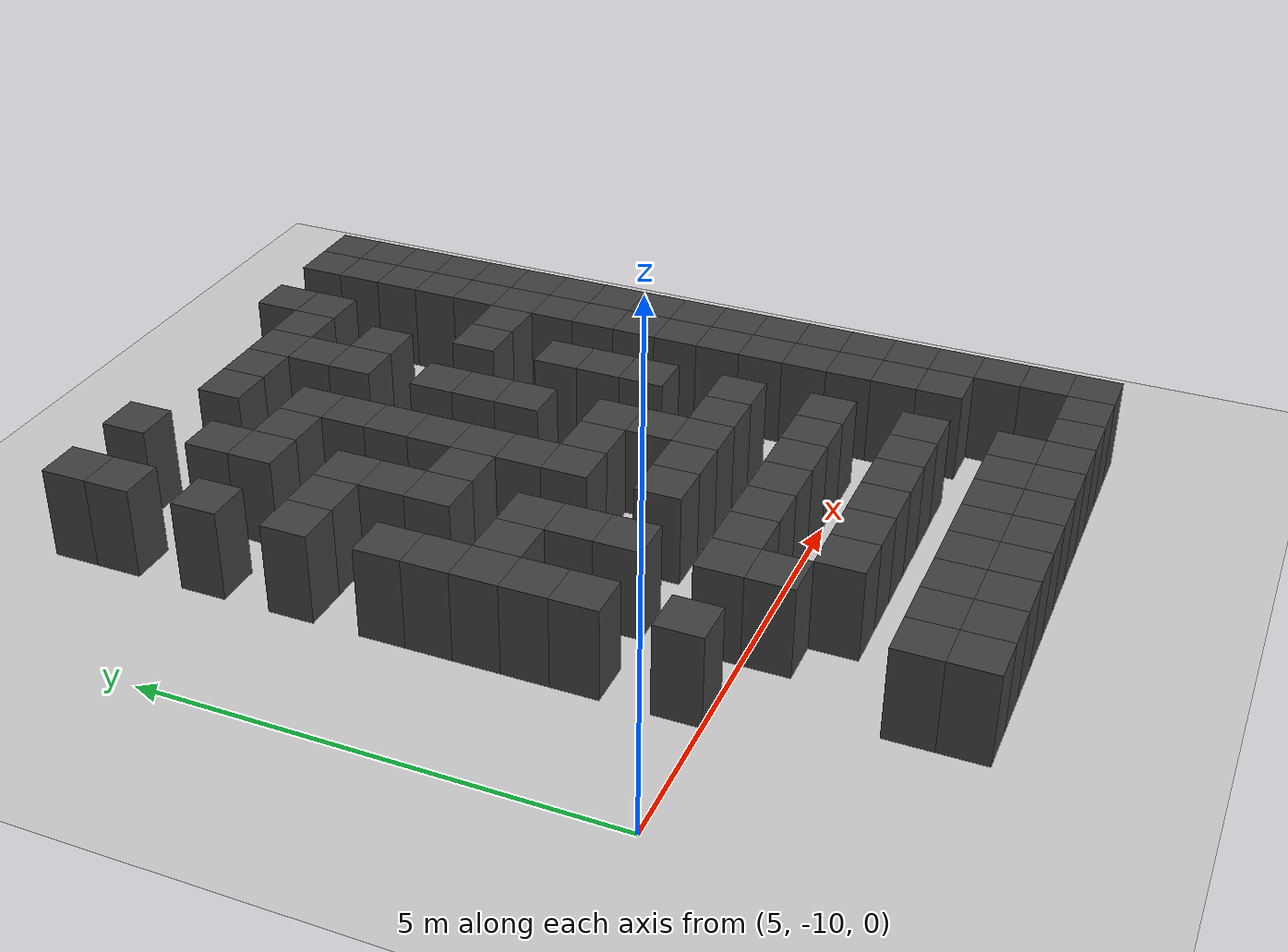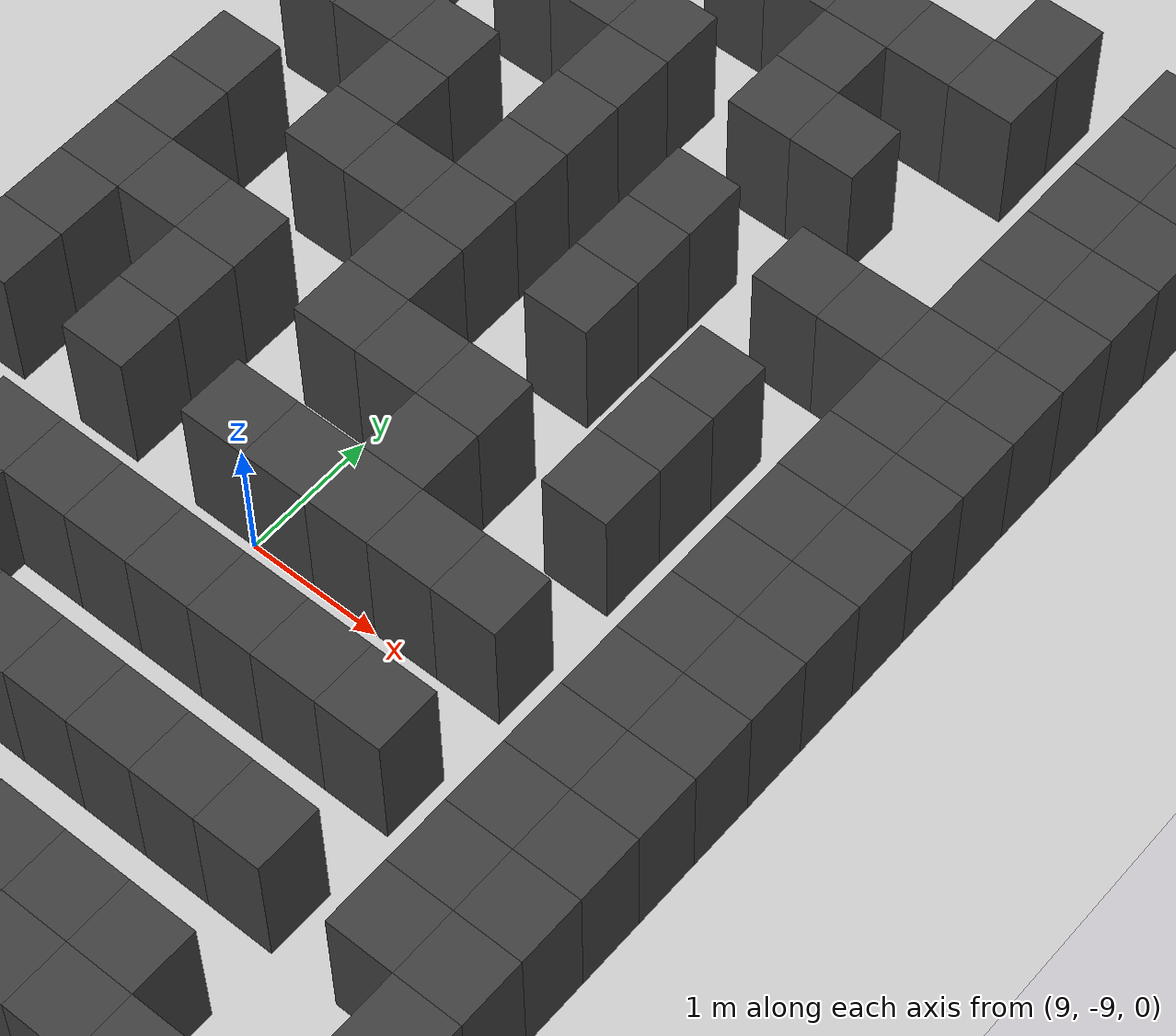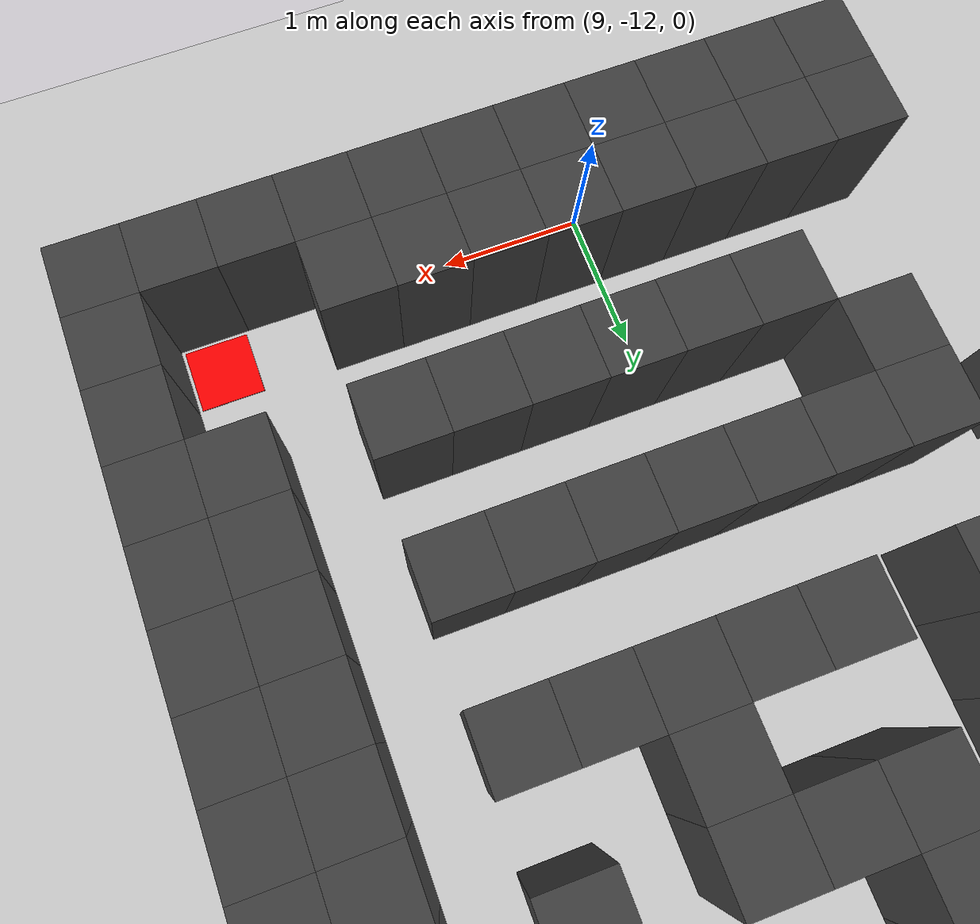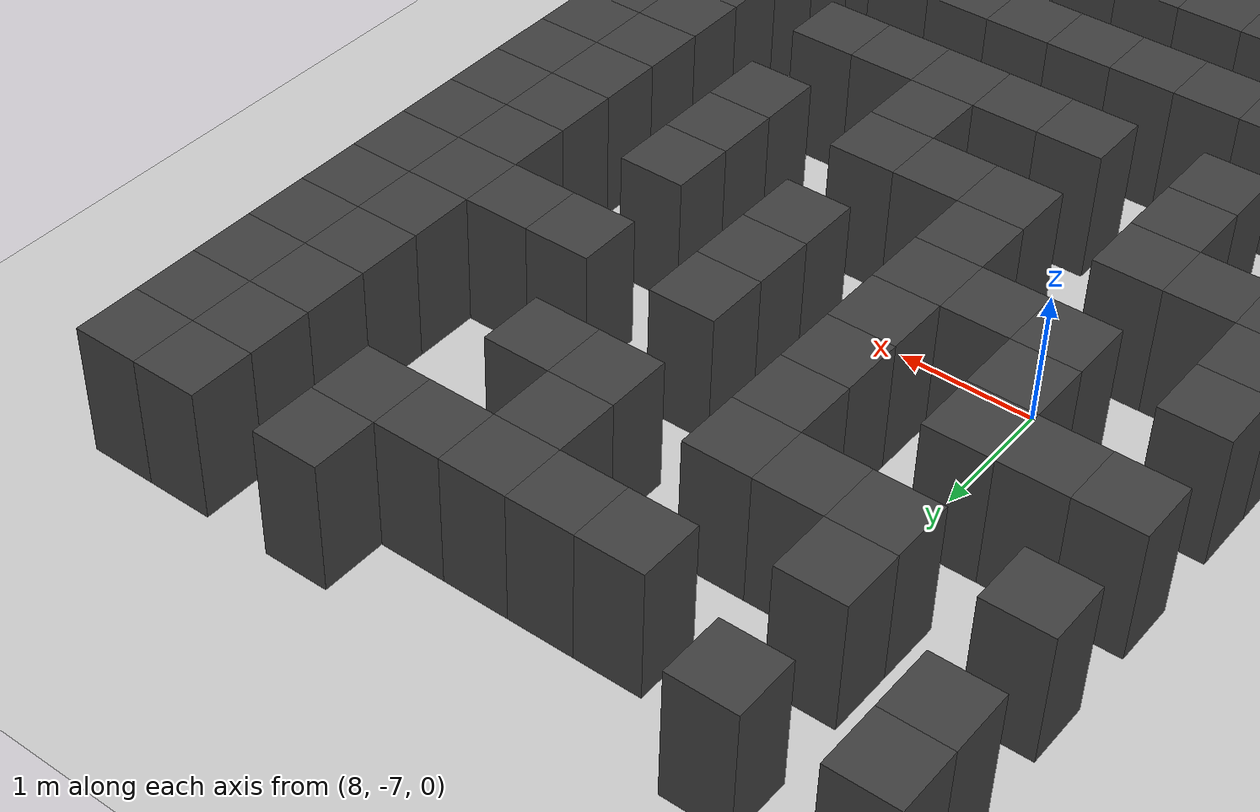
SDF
<sdf version="1.7">
 <world name="map_16271">
  <model name="ground_plane">
   <static>true</static>
   <link name="link">
    <collision name="collision">
     <geometry><plane><normal>0 0 1</normal><size>200 200</size></plane></geometry>
    </collision>
    <visual name="visual">
     <geometry><plane><normal>0 0 1</normal><size>200 200</size></plane></geometry>
     <material><ambient>0.8 0.8 0.8 1</ambient><diffuse>0.8 0.8 0.8 1</diffuse></material>
    </visual>
   </link>
  </model>
  <model name="maze_environment">
   <static>true</static>
   <link name="wall_758">
    <pose>6.750 -3.250 0.500 0 0 0</pose>
    <collision name="col"><geometry><box><size>0.5 0.5 1.0</size></box></geometry></collision>
    <visual name="vis">
     <geometry><box><size>0.5 0.5 1.0</size></box></geometry>
     <material><ambient>0.15 0.15 0.15 1</ambient><diffuse>0.25 0.25 0.25 1</diffuse></material>
    </visual>
   </link>
   <link name="wall_759">
    <pose>7.750 -3.250 0.500 0 0 0</pose>
    <collision name="col"><geometry><box><size>0.5 0.5 1.0</size></box></geometry></collision>
    <visual name="vis">
     <geometry><box><size>0.5 0.5 1.0</size></box></geometry>
     <material><ambient>0.15 0.15 0.15 1</ambient><diffuse>0.25 0.25 0.25 1</diffuse></material>
    </visual>
   </link>
   <link name="wall_760">
    <pose>10.750 -3.250 0.500 0 0 0</pose>
    <collision name="col"><geometry><box><size>0.5 0.5 1.0</size></box></geometry></collision>
    <visual name="vis">
     <geometry><box><size>0.5 0.5 1.0</size></box></geometry>
     <material><ambient>0.15 0.15 0.15 1</ambient><diffuse>0.25 0.25 0.25 1</diffuse></material>
    </visual>
   </link>
   <link name="wall_761">
    <pose>11.750 -3.250 0.500 0 0 0</pose>
    <collision name="col"><geometry><box><size>0.5 0.5 1.0</size></box></geometry></collision>
    <visual name="vis">
     <geometry><box><size>0.5 0.5 1.0</size></box></geometry>
     <material><ambient>0.15 0.15 0.15 1</ambient><diffuse>0.25 0.25 0.25 1</diffuse></material>
    </visual>
   </link>
   <link name="wall_762">
    <pose>12.250 -3.250 0.500 0 0 0</pose>
    <collision name="col"><geometry><box><size>0.5 0.5 1.0</size></box></geometry></collision>
    <visual name="vis">
     <geometry><box><size>0.5 0.5 1.0</size></box></geometry>
     <material><ambient>0.15 0.15 0.15 1</ambient><diffuse>0.25 0.25 0.25 1</diffuse></material>
    </visual>
   </link>
   <link name="wall_789">
    <pose>6.750 -3.750 0.500 0 0 0</pose>
    <collision name="col"><geometry><box><size>0.5 0.5 1.0</size></box></geometry></collision>
    <visual name="vis">
     <geometry><box><size>0.5 0.5 1.0</size></box></geometry>
     <material><ambient>0.15 0.15 0.15 1</ambient><diffuse>0.25 0.25 0.25 1</diffuse></material>
    </visual>
   </link>
   <link name="wall_790">
    <pose>8.750 -3.750 0.500 0 0 0</pose>
    <collision name="col"><geometry><box><size>0.5 0.5 1.0</size></box></geometry></collision>
    <visual name="vis">
     <geometry><box><size>0.5 0.5 1.0</size></box></geometry>
     <material><ambient>0.15 0.15 0.15 1</ambient><diffuse>0.25 0.25 0.25 1</diffuse></material>
    </visual>
   </link>
   <link name="wall_791">
    <pose>9.250 -3.750 0.500 0 0 0</pose>
    <collision name="col"><geometry><box><size>0.5 0.5 1.0</size></box></geometry></collision>
    <visual name="vis">
     <geometry><box><size>0.5 0.5 1.0</size></box></geometry>
     <material><ambient>0.15 0.15 0.15 1</ambient><diffuse>0.25 0.25 0.25 1</diffuse></material>
    </visual>
   </link>
   <link name="wall_792">
    <pose>9.750 -3.750 0.500 0 0 0</pose>
    <collision name="col"><geometry><box><size>0.5 0.5 1.0</size></box></geometry></collision>
    <visual name="vis">
     <geometry><box><size>0.5 0.5 1.0</size></box></geometry>
     <material><ambient>0.15 0.15 0.15 1</ambient><diffuse>0.25 0.25 0.25 1</diffuse></material>
    </visual>
   </link>
   <link name="wall_793">
    <pose>10.250 -3.750 0.500 0 0 0</pose>
    <collision name="col"><geometry><box><size>0.5 0.5 1.0</size></box></geometry></collision>
    <visual name="vis">
     <geometry><box><size>0.5 0.5 1.0</size></box></geometry>
     <material><ambient>0.15 0.15 0.15 1</ambient><diffuse>0.25 0.25 0.25 1</diffuse></material>
    </visual>
   </link>
   <link name="wall_794">
    <pose>10.750 -3.750 0.500 0 0 0</pose>
    <collision name="col"><geometry><box><size>0.5 0.5 1.0</size></box></geometry></collision>
    <visual name="vis">
     <geometry><box><size>0.5 0.5 1.0</size></box></geometry>
     <material><ambient>0.15 0.15 0.15 1</ambient><diffuse>0.25 0.25 0.25 1</diffuse></material>
    </visual>
   </link>
   <link name="wall_795">
    <pose>11.750 -3.750 0.500 0 0 0</pose>
    <collision name="col"><geometry><box><size>0.5 0.5 1.0</size></box></geometry></collision>
    <visual name="vis">
     <geometry><box><size>0.5 0.5 1.0</size></box></geometry>
     <material><ambient>0.15 0.15 0.15 1</ambient><diffuse>0.25 0.25 0.25 1</diffuse></material>
    </visual>
   </link>
   <link name="wall_796">
    <pose>12.250 -3.750 0.500 0 0 0</pose>
    <collision name="col"><geometry><box><size>0.5 0.5 1.0</size></box></geometry></collision>
    <visual name="vis">
     <geometry><box><size>0.5 0.5 1.0</size></box></geometry>
     <material><ambient>0.15 0.15 0.15 1</ambient><diffuse>0.25 0.25 0.25 1</diffuse></material>
    </visual>
   </link>
   <link name="wall_807">
    <pose>7.750 -4.250 0.500 0 0 0</pose>
    <collision name="col"><geometry><box><size>0.5 0.5 1.0</size></box></geometry></collision>
    <visual name="vis">
     <geometry><box><size>0.5 0.5 1.0</size></box></geometry>
     <material><ambient>0.15 0.15 0.15 1</ambient><diffuse>0.25 0.25 0.25 1</diffuse></material>
    </visual>
   </link>
   <link name="wall_808">
    <pose>9.750 -4.250 0.500 0 0 0</pose>
    <collision name="col"><geometry><box><size>0.5 0.5 1.0</size></box></geometry></collision>
    <visual name="vis">
     <geometry><box><size>0.5 0.5 1.0</size></box></geometry>
     <material><ambient>0.15 0.15 0.15 1</ambient><diffuse>0.25 0.25 0.25 1</diffuse></material>
    </visual>
   </link>
   <link name="wall_809">
    <pose>11.750 -4.250 0.500 0 0 0</pose>
    <collision name="col"><geometry><box><size>0.5 0.5 1.0</size></box></geometry></collision>
    <visual name="vis">
     <geometry><box><size>0.5 0.5 1.0</size></box></geometry>
     <material><ambient>0.15 0.15 0.15 1</ambient><diffuse>0.25 0.25 0.25 1</diffuse></material>
    </visual>
   </link>
   <link name="wall_810">
    <pose>12.250 -4.250 0.500 0 0 0</pose>
    <collision name="col"><geometry><box><size>0.5 0.5 1.0</size></box></geometry></collision>
    <visual name="vis">
     <geometry><box><size>0.5 0.5 1.0</size></box></geometry>
     <material><ambient>0.15 0.15 0.15 1</ambient><diffuse>0.25 0.25 0.25 1</diffuse></material>
    </visual>
   </link>
   <link name="wall_838">
    <pose>6.750 -4.750 0.500 0 0 0</pose>
    <collision name="col"><geometry><box><size>0.5 0.5 1.0</size></box></geometry></collision>
    <visual name="vis">
     <geometry><box><size>0.5 0.5 1.0</size></box></geometry>
     <material><ambient>0.15 0.15 0.15 1</ambient><diffuse>0.25 0.25 0.25 1</diffuse></material>
    </visual>
   </link>
   <link name="wall_839">
    <pose>7.750 -4.750 0.500 0 0 0</pose>
    <collision name="col"><geometry><box><size>0.5 0.5 1.0</size></box></geometry></collision>
    <visual name="vis">
     <geometry><box><size>0.5 0.5 1.0</size></box></geometry>
     <material><ambient>0.15 0.15 0.15 1</ambient><diffuse>0.25 0.25 0.25 1</diffuse></material>
    </visual>
   </link>
   <link name="wall_840">
    <pose>8.250 -4.750 0.500 0 0 0</pose>
    <collision name="col"><geometry><box><size>0.5 0.5 1.0</size></box></geometry></collision>
    <visual name="vis">
     <geometry><box><size>0.5 0.5 1.0</size></box></geometry>
     <material><ambient>0.15 0.15 0.15 1</ambient><diffuse>0.25 0.25 0.25 1</diffuse></material>
    </visual>
   </link>
   <link name="wall_841">
    <pose>8.750 -4.750 0.500 0 0 0</pose>
    <collision name="col"><geometry><box><size>0.5 0.5 1.0</size></box></geometry></collision>
    <visual name="vis">
     <geometry><box><size>0.5 0.5 1.0</size></box></geometry>
     <material><ambient>0.15 0.15 0.15 1</ambient><diffuse>0.25 0.25 0.25 1</diffuse></material>
    </visual>
   </link>
   <link name="wall_842">
    <pose>9.750 -4.750 0.500 0 0 0</pose>
    <collision name="col"><geometry><box><size>0.5 0.5 1.0</size></box></geometry></collision>
    <visual name="vis">
     <geometry><box><size>0.5 0.5 1.0</size></box></geometry>
     <material><ambient>0.15 0.15 0.15 1</ambient><diffuse>0.25 0.25 0.25 1</diffuse></material>
    </visual>
   </link>
   <link name="wall_843">
    <pose>10.250 -4.750 0.500 0 0 0</pose>
    <collision name="col"><geometry><box><size>0.5 0.5 1.0</size></box></geometry></collision>
    <visual name="vis">
     <geometry><box><size>0.5 0.5 1.0</size></box></geometry>
     <material><ambient>0.15 0.15 0.15 1</ambient><diffuse>0.25 0.25 0.25 1</diffuse></material>
    </visual>
   </link>
   <link name="wall_844">
    <pose>11.750 -4.750 0.500 0 0 0</pose>
    <collision name="col"><geometry><box><size>0.5 0.5 1.0</size></box></geometry></collision>
    <visual name="vis">
     <geometry><box><size>0.5 0.5 1.0</size></box></geometry>
     <material><ambient>0.15 0.15 0.15 1</ambient><diffuse>0.25 0.25 0.25 1</diffuse></material>
    </visual>
   </link>
   <link name="wall_845">
    <pose>12.250 -4.750 0.500 0 0 0</pose>
    <collision name="col"><geometry><box><size>0.5 0.5 1.0</size></box></geometry></collision>
    <visual name="vis">
     <geometry><box><size>0.5 0.5 1.0</size></box></geometry>
     <material><ambient>0.15 0.15 0.15 1</ambient><diffuse>0.25 0.25 0.25 1</diffuse></material>
    </visual>
   </link>
   <link name="wall_858">
    <pose>8.750 -5.250 0.500 0 0 0</pose>
    <collision name="col"><geometry><box><size>0.5 0.5 1.0</size></box></geometry></collision>
    <visual name="vis">
     <geometry><box><size>0.5 0.5 1.0</size></box></geometry>
     <material><ambient>0.15 0.15 0.15 1</ambient><diffuse>0.25 0.25 0.25 1</diffuse></material>
    </visual>
   </link>
   <link name="wall_859">
    <pose>11.750 -5.250 0.500 0 0 0</pose>
    <collision name="col"><geometry><box><size>0.5 0.5 1.0</size></box></geometry></collision>
    <visual name="vis">
     <geometry><box><size>0.5 0.5 1.0</size></box></geometry>
     <material><ambient>0.15 0.15 0.15 1</ambient><diffuse>0.25 0.25 0.25 1</diffuse></material>
    </visual>
   </link>
   <link name="wall_860">
    <pose>12.250 -5.250 0.500 0 0 0</pose>
    <collision name="col"><geometry><box><size>0.5 0.5 1.0</size></box></geometry></collision>
    <visual name="vis">
     <geometry><box><size>0.5 0.5 1.0</size></box></geometry>
     <material><ambient>0.15 0.15 0.15 1</ambient><diffuse>0.25 0.25 0.25 1</diffuse></material>
    </visual>
   </link>
   <link name="wall_884">
    <pose>6.750 -5.750 0.500 0 0 0</pose>
    <collision name="col"><geometry><box><size>0.5 0.5 1.0</size></box></geometry></collision>
    <visual name="vis">
     <geometry><box><size>0.5 0.5 1.0</size></box></geometry>
     <material><ambient>0.15 0.15 0.15 1</ambient><diffuse>0.25 0.25 0.25 1</diffuse></material>
    </visual>
   </link>
   <link name="wall_885">
    <pose>7.250 -5.750 0.500 0 0 0</pose>
    <collision name="col"><geometry><box><size>0.5 0.5 1.0</size></box></geometry></collision>
    <visual name="vis">
     <geometry><box><size>0.5 0.5 1.0</size></box></geometry>
     <material><ambient>0.15 0.15 0.15 1</ambient><diffuse>0.25 0.25 0.25 1</diffuse></material>
    </visual>
   </link>
   <link name="wall_886">
    <pose>7.750 -5.750 0.500 0 0 0</pose>
    <collision name="col"><geometry><box><size>0.5 0.5 1.0</size></box></geometry></collision>
    <visual name="vis">
     <geometry><box><size>0.5 0.5 1.0</size></box></geometry>
     <material><ambient>0.15 0.15 0.15 1</ambient><diffuse>0.25 0.25 0.25 1</diffuse></material>
    </visual>
   </link>
   <link name="wall_887">
    <pose>8.750 -5.750 0.500 0 0 0</pose>
    <collision name="col"><geometry><box><size>0.5 0.5 1.0</size></box></geometry></collision>
    <visual name="vis">
     <geometry><box><size>0.5 0.5 1.0</size></box></geometry>
     <material><ambient>0.15 0.15 0.15 1</ambient><diffuse>0.25 0.25 0.25 1</diffuse></material>
    </visual>
   </link>
   <link name="wall_888">
    <pose>9.750 -5.750 0.500 0 0 0</pose>
    <collision name="col"><geometry><box><size>0.5 0.5 1.0</size></box></geometry></collision>
    <visual name="vis">
     <geometry><box><size>0.5 0.5 1.0</size></box></geometry>
     <material><ambient>0.15 0.15 0.15 1</ambient><diffuse>0.25 0.25 0.25 1</diffuse></material>
    </visual>
   </link>
   <link name="wall_889">
    <pose>10.750 -5.750 0.500 0 0 0</pose>
    <collision name="col"><geometry><box><size>0.5 0.5 1.0</size></box></geometry></collision>
    <visual name="vis">
     <geometry><box><size>0.5 0.5 1.0</size></box></geometry>
     <material><ambient>0.15 0.15 0.15 1</ambient><diffuse>0.25 0.25 0.25 1</diffuse></material>
    </visual>
   </link>
   <link name="wall_890">
    <pose>11.250 -5.750 0.500 0 0 0</pose>
    <collision name="col"><geometry><box><size>0.5 0.5 1.0</size></box></geometry></collision>
    <visual name="vis">
     <geometry><box><size>0.5 0.5 1.0</size></box></geometry>
     <material><ambient>0.15 0.15 0.15 1</ambient><diffuse>0.25 0.25 0.25 1</diffuse></material>
    </visual>
   </link>
   <link name="wall_891">
    <pose>11.750 -5.750 0.500 0 0 0</pose>
    <collision name="col"><geometry><box><size>0.5 0.5 1.0</size></box></geometry></collision>
    <visual name="vis">
     <geometry><box><size>0.5 0.5 1.0</size></box></geometry>
     <material><ambient>0.15 0.15 0.15 1</ambient><diffuse>0.25 0.25 0.25 1</diffuse></material>
    </visual>
   </link>
   <link name="wall_892">
    <pose>12.250 -5.750 0.500 0 0 0</pose>
    <collision name="col"><geometry><box><size>0.5 0.5 1.0</size></box></geometry></collision>
    <visual name="vis">
     <geometry><box><size>0.5 0.5 1.0</size></box></geometry>
     <material><ambient>0.15 0.15 0.15 1</ambient><diffuse>0.25 0.25 0.25 1</diffuse></material>
    </visual>
   </link>
   <link name="wall_903">
    <pose>7.750 -6.250 0.500 0 0 0</pose>
    <collision name="col"><geometry><box><size>0.5 0.5 1.0</size></box></geometry></collision>
    <visual name="vis">
     <geometry><box><size>0.5 0.5 1.0</size></box></geometry>
     <material><ambient>0.15 0.15 0.15 1</ambient><diffuse>0.25 0.25 0.25 1</diffuse></material>
    </visual>
   </link>
   <link name="wall_904">
    <pose>8.750 -6.250 0.500 0 0 0</pose>
    <collision name="col"><geometry><box><size>0.5 0.5 1.0</size></box></geometry></collision>
    <visual name="vis">
     <geometry><box><size>0.5 0.5 1.0</size></box></geometry>
     <material><ambient>0.15 0.15 0.15 1</ambient><diffuse>0.25 0.25 0.25 1</diffuse></material>
    </visual>
   </link>
   <link name="wall_905">
    <pose>9.750 -6.250 0.500 0 0 0</pose>
    <collision name="col"><geometry><box><size>0.5 0.5 1.0</size></box></geometry></collision>
    <visual name="vis">
     <geometry><box><size>0.5 0.5 1.0</size></box></geometry>
     <material><ambient>0.15 0.15 0.15 1</ambient><diffuse>0.25 0.25 0.25 1</diffuse></material>
    </visual>
   </link>
   <link name="wall_906">
    <pose>11.750 -6.250 0.500 0 0 0</pose>
    <collision name="col"><geometry><box><size>0.5 0.5 1.0</size></box></geometry></collision>
    <visual name="vis">
     <geometry><box><size>0.5 0.5 1.0</size></box></geometry>
     <material><ambient>0.15 0.15 0.15 1</ambient><diffuse>0.25 0.25 0.25 1</diffuse></material>
    </visual>
   </link>
   <link name="wall_907">
    <pose>12.250 -6.250 0.500 0 0 0</pose>
    <collision name="col"><geometry><box><size>0.5 0.5 1.0</size></box></geometry></collision>
    <visual name="vis">
     <geometry><box><size>0.5 0.5 1.0</size></box></geometry>
     <material><ambient>0.15 0.15 0.15 1</ambient><diffuse>0.25 0.25 0.25 1</diffuse></material>
    </visual>
   </link>
   <link name="wall_934">
    <pose>6.750 -6.750 0.500 0 0 0</pose>
    <collision name="col"><geometry><box><size>0.5 0.5 1.0</size></box></geometry></collision>
    <visual name="vis">
     <geometry><box><size>0.5 0.5 1.0</size></box></geometry>
     <material><ambient>0.15 0.15 0.15 1</ambient><diffuse>0.25 0.25 0.25 1</diffuse></material>
    </visual>
   </link>
   <link name="wall_935">
    <pose>7.750 -6.750 0.500 0 0 0</pose>
    <collision name="col"><geometry><box><size>0.5 0.5 1.0</size></box></geometry></collision>
    <visual name="vis">
     <geometry><box><size>0.5 0.5 1.0</size></box></geometry>
     <material><ambient>0.15 0.15 0.15 1</ambient><diffuse>0.25 0.25 0.25 1</diffuse></material>
    </visual>
   </link>
   <link name="wall_936">
    <pose>8.250 -6.750 0.500 0 0 0</pose>
    <collision name="col"><geometry><box><size>0.5 0.5 1.0</size></box></geometry></collision>
    <visual name="vis">
     <geometry><box><size>0.5 0.5 1.0</size></box></geometry>
     <material><ambient>0.15 0.15 0.15 1</ambient><diffuse>0.25 0.25 0.25 1</diffuse></material>
    </visual>
   </link>
   <link name="wall_937">
    <pose>8.750 -6.750 0.500 0 0 0</pose>
    <collision name="col"><geometry><box><size>0.5 0.5 1.0</size></box></geometry></collision>
    <visual name="vis">
     <geometry><box><size>0.5 0.5 1.0</size></box></geometry>
     <material><ambient>0.15 0.15 0.15 1</ambient><diffuse>0.25 0.25 0.25 1</diffuse></material>
    </visual>
   </link>
   <link name="wall_938">
    <pose>9.750 -6.750 0.500 0 0 0</pose>
    <collision name="col"><geometry><box><size>0.5 0.5 1.0</size></box></geometry></collision>
    <visual name="vis">
     <geometry><box><size>0.5 0.5 1.0</size></box></geometry>
     <material><ambient>0.15 0.15 0.15 1</ambient><diffuse>0.25 0.25 0.25 1</diffuse></material>
    </visual>
   </link>
   <link name="wall_939">
    <pose>10.750 -6.750 0.500 0 0 0</pose>
    <collision name="col"><geometry><box><size>0.5 0.5 1.0</size></box></geometry></collision>
    <visual name="vis">
     <geometry><box><size>0.5 0.5 1.0</size></box></geometry>
     <material><ambient>0.15 0.15 0.15 1</ambient><diffuse>0.25 0.25 0.25 1</diffuse></material>
    </visual>
   </link>
   <link name="wall_940">
    <pose>11.750 -6.750 0.500 0 0 0</pose>
    <collision name="col"><geometry><box><size>0.5 0.5 1.0</size></box></geometry></collision>
    <visual name="vis">
     <geometry><box><size>0.5 0.5 1.0</size></box></geometry>
     <material><ambient>0.15 0.15 0.15 1</ambient><diffuse>0.25 0.25 0.25 1</diffuse></material>
    </visual>
   </link>
   <link name="wall_941">
    <pose>12.250 -6.750 0.500 0 0 0</pose>
    <collision name="col"><geometry><box><size>0.5 0.5 1.0</size></box></geometry></collision>
    <visual name="vis">
     <geometry><box><size>0.5 0.5 1.0</size></box></geometry>
     <material><ambient>0.15 0.15 0.15 1</ambient><diffuse>0.25 0.25 0.25 1</diffuse></material>
    </visual>
   </link>
   <link name="wall_954">
    <pose>6.750 -7.250 0.500 0 0 0</pose>
    <collision name="col"><geometry><box><size>0.5 0.5 1.0</size></box></geometry></collision>
    <visual name="vis">
     <geometry><box><size>0.5 0.5 1.0</size></box></geometry>
     <material><ambient>0.15 0.15 0.15 1</ambient><diffuse>0.25 0.25 0.25 1</diffuse></material>
    </visual>
   </link>
   <link name="wall_955">
    <pose>8.750 -7.250 0.500 0 0 0</pose>
    <collision name="col"><geometry><box><size>0.5 0.5 1.0</size></box></geometry></collision>
    <visual name="vis">
     <geometry><box><size>0.5 0.5 1.0</size></box></geometry>
     <material><ambient>0.15 0.15 0.15 1</ambient><diffuse>0.25 0.25 0.25 1</diffuse></material>
    </visual>
   </link>
   <link name="wall_956">
    <pose>10.750 -7.250 0.500 0 0 0</pose>
    <collision name="col"><geometry><box><size>0.5 0.5 1.0</size></box></geometry></collision>
    <visual name="vis">
     <geometry><box><size>0.5 0.5 1.0</size></box></geometry>
     <material><ambient>0.15 0.15 0.15 1</ambient><diffuse>0.25 0.25 0.25 1</diffuse></material>
    </visual>
   </link>
   <link name="wall_957">
    <pose>11.750 -7.250 0.500 0 0 0</pose>
    <collision name="col"><geometry><box><size>0.5 0.5 1.0</size></box></geometry></collision>
    <visual name="vis">
     <geometry><box><size>0.5 0.5 1.0</size></box></geometry>
     <material><ambient>0.15 0.15 0.15 1</ambient><diffuse>0.25 0.25 0.25 1</diffuse></material>
    </visual>
   </link>
   <link name="wall_958">
    <pose>12.250 -7.250 0.500 0 0 0</pose>
    <collision name="col"><geometry><box><size>0.5 0.5 1.0</size></box></geometry></collision>
    <visual name="vis">
     <geometry><box><size>0.5 0.5 1.0</size></box></geometry>
     <material><ambient>0.15 0.15 0.15 1</ambient><diffuse>0.25 0.25 0.25 1</diffuse></material>
    </visual>
   </link>
   <link name="wall_982">
    <pose>6.750 -7.750 0.500 0 0 0</pose>
    <collision name="col"><geometry><box><size>0.5 0.5 1.0</size></box></geometry></collision>
    <visual name="vis">
     <geometry><box><size>0.5 0.5 1.0</size></box></geometry>
     <material><ambient>0.15 0.15 0.15 1</ambient><diffuse>0.25 0.25 0.25 1</diffuse></material>
    </visual>
   </link>
   <link name="wall_983">
    <pose>7.250 -7.750 0.500 0 0 0</pose>
    <collision name="col"><geometry><box><size>0.5 0.5 1.0</size></box></geometry></collision>
    <visual name="vis">
     <geometry><box><size>0.5 0.5 1.0</size></box></geometry>
     <material><ambient>0.15 0.15 0.15 1</ambient><diffuse>0.25 0.25 0.25 1</diffuse></material>
    </visual>
   </link>
   <link name="wall_984">
    <pose>7.750 -7.750 0.500 0 0 0</pose>
    <collision name="col"><geometry><box><size>0.5 0.5 1.0</size></box></geometry></collision>
    <visual name="vis">
     <geometry><box><size>0.5 0.5 1.0</size></box></geometry>
     <material><ambient>0.15 0.15 0.15 1</ambient><diffuse>0.25 0.25 0.25 1</diffuse></material>
    </visual>
   </link>
   <link name="wall_985">
    <pose>8.750 -7.750 0.500 0 0 0</pose>
    <collision name="col"><geometry><box><size>0.5 0.5 1.0</size></box></geometry></collision>
    <visual name="vis">
     <geometry><box><size>0.5 0.5 1.0</size></box></geometry>
     <material><ambient>0.15 0.15 0.15 1</ambient><diffuse>0.25 0.25 0.25 1</diffuse></material>
    </visual>
   </link>
   <link name="wall_986">
    <pose>9.250 -7.750 0.500 0 0 0</pose>
    <collision name="col"><geometry><box><size>0.5 0.5 1.0</size></box></geometry></collision>
    <visual name="vis">
     <geometry><box><size>0.5 0.5 1.0</size></box></geometry>
     <material><ambient>0.15 0.15 0.15 1</ambient><diffuse>0.25 0.25 0.25 1</diffuse></material>
    </visual>
   </link>
   <link name="wall_987">
    <pose>9.750 -7.750 0.500 0 0 0</pose>
    <collision name="col"><geometry><box><size>0.5 0.5 1.0</size></box></geometry></collision>
    <visual name="vis">
     <geometry><box><size>0.5 0.5 1.0</size></box></geometry>
     <material><ambient>0.15 0.15 0.15 1</ambient><diffuse>0.25 0.25 0.25 1</diffuse></material>
    </visual>
   </link>
   <link name="wall_988">
    <pose>10.750 -7.750 0.500 0 0 0</pose>
    <collision name="col"><geometry><box><size>0.5 0.5 1.0</size></box></geometry></collision>
    <visual name="vis">
     <geometry><box><size>0.5 0.5 1.0</size></box></geometry>
     <material><ambient>0.15 0.15 0.15 1</ambient><diffuse>0.25 0.25 0.25 1</diffuse></material>
    </visual>
   </link>
   <link name="wall_989">
    <pose>11.750 -7.750 0.500 0 0 0</pose>
    <collision name="col"><geometry><box><size>0.5 0.5 1.0</size></box></geometry></collision>
    <visual name="vis">
     <geometry><box><size>0.5 0.5 1.0</size></box></geometry>
     <material><ambient>0.15 0.15 0.15 1</ambient><diffuse>0.25 0.25 0.25 1</diffuse></material>
    </visual>
   </link>
   <link name="wall_990">
    <pose>12.250 -7.750 0.500 0 0 0</pose>
    <collision name="col"><geometry><box><size>0.5 0.5 1.0</size></box></geometry></collision>
    <visual name="vis">
     <geometry><box><size>0.5 0.5 1.0</size></box></geometry>
     <material><ambient>0.15 0.15 0.15 1</ambient><diffuse>0.25 0.25 0.25 1</diffuse></material>
    </visual>
   </link>
   <link name="wall_1001">
    <pose>6.750 -8.250 0.500 0 0 0</pose>
    <collision name="col"><geometry><box><size>0.5 0.5 1.0</size></box></geometry></collision>
    <visual name="vis">
     <geometry><box><size>0.5 0.5 1.0</size></box></geometry>
     <material><ambient>0.15 0.15 0.15 1</ambient><diffuse>0.25 0.25 0.25 1</diffuse></material>
    </visual>
   </link>
   <link name="wall_1002">
    <pose>7.750 -8.250 0.500 0 0 0</pose>
    <collision name="col"><geometry><box><size>0.5 0.5 1.0</size></box></geometry></collision>
    <visual name="vis">
     <geometry><box><size>0.5 0.5 1.0</size></box></geometry>
     <material><ambient>0.15 0.15 0.15 1</ambient><diffuse>0.25 0.25 0.25 1</diffuse></material>
    </visual>
   </link>
   <link name="wall_1003">
    <pose>9.750 -8.250 0.500 0 0 0</pose>
    <collision name="col"><geometry><box><size>0.5 0.5 1.0</size></box></geometry></collision>
    <visual name="vis">
     <geometry><box><size>0.5 0.5 1.0</size></box></geometry>
     <material><ambient>0.15 0.15 0.15 1</ambient><diffuse>0.25 0.25 0.25 1</diffuse></material>
    </visual>
   </link>
   <link name="wall_1004">
    <pose>11.750 -8.250 0.500 0 0 0</pose>
    <collision name="col"><geometry><box><size>0.5 0.5 1.0</size></box></geometry></collision>
    <visual name="vis">
     <geometry><box><size>0.5 0.5 1.0</size></box></geometry>
     <material><ambient>0.15 0.15 0.15 1</ambient><diffuse>0.25 0.25 0.25 1</diffuse></material>
    </visual>
   </link>
   <link name="wall_1005">
    <pose>12.250 -8.250 0.500 0 0 0</pose>
    <collision name="col"><geometry><box><size>0.5 0.5 1.0</size></box></geometry></collision>
    <visual name="vis">
     <geometry><box><size>0.5 0.5 1.0</size></box></geometry>
     <material><ambient>0.15 0.15 0.15 1</ambient><diffuse>0.25 0.25 0.25 1</diffuse></material>
    </visual>
   </link>
   <link name="wall_1033">
    <pose>6.750 -8.750 0.500 0 0 0</pose>
    <collision name="col"><geometry><box><size>0.5 0.5 1.0</size></box></geometry></collision>
    <visual name="vis">
     <geometry><box><size>0.5 0.5 1.0</size></box></geometry>
     <material><ambient>0.15 0.15 0.15 1</ambient><diffuse>0.25 0.25 0.25 1</diffuse></material>
    </visual>
   </link>
   <link name="wall_1034">
    <pose>7.750 -8.750 0.500 0 0 0</pose>
    <collision name="col"><geometry><box><size>0.5 0.5 1.0</size></box></geometry></collision>
    <visual name="vis">
     <geometry><box><size>0.5 0.5 1.0</size></box></geometry>
     <material><ambient>0.15 0.15 0.15 1</ambient><diffuse>0.25 0.25 0.25 1</diffuse></material>
    </visual>
   </link>
   <link name="wall_1035">
    <pose>8.750 -8.750 0.500 0 0 0</pose>
    <collision name="col"><geometry><box><size>0.5 0.5 1.0</size></box></geometry></collision>
    <visual name="vis">
     <geometry><box><size>0.5 0.5 1.0</size></box></geometry>
     <material><ambient>0.15 0.15 0.15 1</ambient><diffuse>0.25 0.25 0.25 1</diffuse></material>
    </visual>
   </link>
   <link name="wall_1036">
    <pose>9.250 -8.750 0.500 0 0 0</pose>
    <collision name="col"><geometry><box><size>0.5 0.5 1.0</size></box></geometry></collision>
    <visual name="vis">
     <geometry><box><size>0.5 0.5 1.0</size></box></geometry>
     <material><ambient>0.15 0.15 0.15 1</ambient><diffuse>0.25 0.25 0.25 1</diffuse></material>
    </visual>
   </link>
   <link name="wall_1037">
    <pose>9.750 -8.750 0.500 0 0 0</pose>
    <collision name="col"><geometry><box><size>0.5 0.5 1.0</size></box></geometry></collision>
    <visual name="vis">
     <geometry><box><size>0.5 0.5 1.0</size></box></geometry>
     <material><ambient>0.15 0.15 0.15 1</ambient><diffuse>0.25 0.25 0.25 1</diffuse></material>
    </visual>
   </link>
   <link name="wall_1038">
    <pose>10.250 -8.750 0.500 0 0 0</pose>
    <collision name="col"><geometry><box><size>0.5 0.5 1.0</size></box></geometry></collision>
    <visual name="vis">
     <geometry><box><size>0.5 0.5 1.0</size></box></geometry>
     <material><ambient>0.15 0.15 0.15 1</ambient><diffuse>0.25 0.25 0.25 1</diffuse></material>
    </visual>
   </link>
   <link name="wall_1039">
    <pose>10.750 -8.750 0.500 0 0 0</pose>
    <collision name="col"><geometry><box><size>0.5 0.5 1.0</size></box></geometry></collision>
    <visual name="vis">
     <geometry><box><size>0.5 0.5 1.0</size></box></geometry>
     <material><ambient>0.15 0.15 0.15 1</ambient><diffuse>0.25 0.25 0.25 1</diffuse></material>
    </visual>
   </link>
   <link name="wall_1040">
    <pose>11.750 -8.750 0.500 0 0 0</pose>
    <collision name="col"><geometry><box><size>0.5 0.5 1.0</size></box></geometry></collision>
    <visual name="vis">
     <geometry><box><size>0.5 0.5 1.0</size></box></geometry>
     <material><ambient>0.15 0.15 0.15 1</ambient><diffuse>0.25 0.25 0.25 1</diffuse></material>
    </visual>
   </link>
   <link name="wall_1041">
    <pose>12.250 -8.750 0.500 0 0 0</pose>
    <collision name="col"><geometry><box><size>0.5 0.5 1.0</size></box></geometry></collision>
    <visual name="vis">
     <geometry><box><size>0.5 0.5 1.0</size></box></geometry>
     <material><ambient>0.15 0.15 0.15 1</ambient><diffuse>0.25 0.25 0.25 1</diffuse></material>
    </visual>
   </link>
   <link name="wall_1051">
    <pose>11.750 -9.250 0.500 0 0 0</pose>
    <collision name="col"><geometry><box><size>0.5 0.5 1.0</size></box></geometry></collision>
    <visual name="vis">
     <geometry><box><size>0.5 0.5 1.0</size></box></geometry>
     <material><ambient>0.15 0.15 0.15 1</ambient><diffuse>0.25 0.25 0.25 1</diffuse></material>
    </visual>
   </link>
   <link name="wall_1052">
    <pose>12.250 -9.250 0.500 0 0 0</pose>
    <collision name="col"><geometry><box><size>0.5 0.5 1.0</size></box></geometry></collision>
    <visual name="vis">
     <geometry><box><size>0.5 0.5 1.0</size></box></geometry>
     <material><ambient>0.15 0.15 0.15 1</ambient><diffuse>0.25 0.25 0.25 1</diffuse></material>
    </visual>
   </link>
   <link name="wall_1077">
    <pose>6.750 -9.750 0.500 0 0 0</pose>
    <collision name="col"><geometry><box><size>0.5 0.5 1.0</size></box></geometry></collision>
    <visual name="vis">
     <geometry><box><size>0.5 0.5 1.0</size></box></geometry>
     <material><ambient>0.15 0.15 0.15 1</ambient><diffuse>0.25 0.25 0.25 1</diffuse></material>
    </visual>
   </link>
   <link name="wall_1078">
    <pose>7.750 -9.750 0.500 0 0 0</pose>
    <collision name="col"><geometry><box><size>0.5 0.5 1.0</size></box></geometry></collision>
    <visual name="vis">
     <geometry><box><size>0.5 0.5 1.0</size></box></geometry>
     <material><ambient>0.15 0.15 0.15 1</ambient><diffuse>0.25 0.25 0.25 1</diffuse></material>
    </visual>
   </link>
   <link name="wall_1079">
    <pose>8.250 -9.750 0.500 0 0 0</pose>
    <collision name="col"><geometry><box><size>0.5 0.5 1.0</size></box></geometry></collision>
    <visual name="vis">
     <geometry><box><size>0.5 0.5 1.0</size></box></geometry>
     <material><ambient>0.15 0.15 0.15 1</ambient><diffuse>0.25 0.25 0.25 1</diffuse></material>
    </visual>
   </link>
   <link name="wall_1080">
    <pose>8.750 -9.750 0.500 0 0 0</pose>
    <collision name="col"><geometry><box><size>0.5 0.5 1.0</size></box></geometry></collision>
    <visual name="vis">
     <geometry><box><size>0.5 0.5 1.0</size></box></geometry>
     <material><ambient>0.15 0.15 0.15 1</ambient><diffuse>0.25 0.25 0.25 1</diffuse></material>
    </visual>
   </link>
   <link name="wall_1081">
    <pose>9.250 -9.750 0.500 0 0 0</pose>
    <collision name="col"><geometry><box><size>0.5 0.5 1.0</size></box></geometry></collision>
    <visual name="vis">
     <geometry><box><size>0.5 0.5 1.0</size></box></geometry>
     <material><ambient>0.15 0.15 0.15 1</ambient><diffuse>0.25 0.25 0.25 1</diffuse></material>
    </visual>
   </link>
   <link name="wall_1082">
    <pose>9.750 -9.750 0.500 0 0 0</pose>
    <collision name="col"><geometry><box><size>0.5 0.5 1.0</size></box></geometry></collision>
    <visual name="vis">
     <geometry><box><size>0.5 0.5 1.0</size></box></geometry>
     <material><ambient>0.15 0.15 0.15 1</ambient><diffuse>0.25 0.25 0.25 1</diffuse></material>
    </visual>
   </link>
   <link name="wall_1083">
    <pose>10.250 -9.750 0.500 0 0 0</pose>
    <collision name="col"><geometry><box><size>0.5 0.5 1.0</size></box></geometry></collision>
    <visual name="vis">
     <geometry><box><size>0.5 0.5 1.0</size></box></geometry>
     <material><ambient>0.15 0.15 0.15 1</ambient><diffuse>0.25 0.25 0.25 1</diffuse></material>
    </visual>
   </link>
   <link name="wall_1084">
    <pose>10.750 -9.750 0.500 0 0 0</pose>
    <collision name="col"><geometry><box><size>0.5 0.5 1.0</size></box></geometry></collision>
    <visual name="vis">
     <geometry><box><size>0.5 0.5 1.0</size></box></geometry>
     <material><ambient>0.15 0.15 0.15 1</ambient><diffuse>0.25 0.25 0.25 1</diffuse></material>
    </visual>
   </link>
   <link name="wall_1085">
    <pose>11.750 -9.750 0.500 0 0 0</pose>
    <collision name="col"><geometry><box><size>0.5 0.5 1.0</size></box></geometry></collision>
    <visual name="vis">
     <geometry><box><size>0.5 0.5 1.0</size></box></geometry>
     <material><ambient>0.15 0.15 0.15 1</ambient><diffuse>0.25 0.25 0.25 1</diffuse></material>
    </visual>
   </link>
   <link name="wall_1086">
    <pose>12.250 -9.750 0.500 0 0 0</pose>
    <collision name="col"><geometry><box><size>0.5 0.5 1.0</size></box></geometry></collision>
    <visual name="vis">
     <geometry><box><size>0.5 0.5 1.0</size></box></geometry>
     <material><ambient>0.15 0.15 0.15 1</ambient><diffuse>0.25 0.25 0.25 1</diffuse></material>
    </visual>
   </link>
   <link name="wall_1092">
    <pose>7.750 -10.250 0.500 0 0 0</pose>
    <collision name="col"><geometry><box><size>0.5 0.5 1.0</size></box></geometry></collision>
    <visual name="vis">
     <geometry><box><size>0.5 0.5 1.0</size></box></geometry>
     <material><ambient>0.15 0.15 0.15 1</ambient><diffuse>0.25 0.25 0.25 1</diffuse></material>
    </visual>
   </link>
   <link name="wall_1093">
    <pose>11.750 -10.250 0.500 0 0 0</pose>
    <collision name="col"><geometry><box><size>0.5 0.5 1.0</size></box></geometry></collision>
    <visual name="vis">
     <geometry><box><size>0.5 0.5 1.0</size></box></geometry>
     <material><ambient>0.15 0.15 0.15 1</ambient><diffuse>0.25 0.25 0.25 1</diffuse></material>
    </visual>
   </link>
   <link name="wall_1094">
    <pose>12.250 -10.250 0.500 0 0 0</pose>
    <collision name="col"><geometry><box><size>0.5 0.5 1.0</size></box></geometry></collision>
    <visual name="vis">
     <geometry><box><size>0.5 0.5 1.0</size></box></geometry>
     <material><ambient>0.15 0.15 0.15 1</ambient><diffuse>0.25 0.25 0.25 1</diffuse></material>
    </visual>
   </link>
   <link name="wall_1124">
    <pose>8.250 -10.750 0.500 0 0 0</pose>
    <collision name="col"><geometry><box><size>0.5 0.5 1.0</size></box></geometry></collision>
    <visual name="vis">
     <geometry><box><size>0.5 0.5 1.0</size></box></geometry>
     <material><ambient>0.15 0.15 0.15 1</ambient><diffuse>0.25 0.25 0.25 1</diffuse></material>
    </visual>
   </link>
   <link name="wall_1125">
    <pose>8.750 -10.750 0.500 0 0 0</pose>
    <collision name="col"><geometry><box><size>0.5 0.5 1.0</size></box></geometry></collision>
    <visual name="vis">
     <geometry><box><size>0.5 0.5 1.0</size></box></geometry>
     <material><ambient>0.15 0.15 0.15 1</ambient><diffuse>0.25 0.25 0.25 1</diffuse></material>
    </visual>
   </link>
   <link name="wall_1126">
    <pose>9.250 -10.750 0.500 0 0 0</pose>
    <collision name="col"><geometry><box><size>0.5 0.5 1.0</size></box></geometry></collision>
    <visual name="vis">
     <geometry><box><size>0.5 0.5 1.0</size></box></geometry>
     <material><ambient>0.15 0.15 0.15 1</ambient><diffuse>0.25 0.25 0.25 1</diffuse></material>
    </visual>
   </link>
   <link name="wall_1127">
    <pose>9.750 -10.750 0.500 0 0 0</pose>
    <collision name="col"><geometry><box><size>0.5 0.5 1.0</size></box></geometry></collision>
    <visual name="vis">
     <geometry><box><size>0.5 0.5 1.0</size></box></geometry>
     <material><ambient>0.15 0.15 0.15 1</ambient><diffuse>0.25 0.25 0.25 1</diffuse></material>
    </visual>
   </link>
   <link name="wall_1128">
    <pose>10.250 -10.750 0.500 0 0 0</pose>
    <collision name="col"><geometry><box><size>0.5 0.5 1.0</size></box></geometry></collision>
    <visual name="vis">
     <geometry><box><size>0.5 0.5 1.0</size></box></geometry>
     <material><ambient>0.15 0.15 0.15 1</ambient><diffuse>0.25 0.25 0.25 1</diffuse></material>
    </visual>
   </link>
   <link name="wall_1129">
    <pose>10.750 -10.750 0.500 0 0 0</pose>
    <collision name="col"><geometry><box><size>0.5 0.5 1.0</size></box></geometry></collision>
    <visual name="vis">
     <geometry><box><size>0.5 0.5 1.0</size></box></geometry>
     <material><ambient>0.15 0.15 0.15 1</ambient><diffuse>0.25 0.25 0.25 1</diffuse></material>
    </visual>
   </link>
   <link name="wall_1130">
    <pose>11.750 -10.750 0.500 0 0 0</pose>
    <collision name="col"><geometry><box><size>0.5 0.5 1.0</size></box></geometry></collision>
    <visual name="vis">
     <geometry><box><size>0.5 0.5 1.0</size></box></geometry>
     <material><ambient>0.15 0.15 0.15 1</ambient><diffuse>0.25 0.25 0.25 1</diffuse></material>
    </visual>
   </link>
   <link name="wall_1131">
    <pose>12.250 -10.750 0.500 0 0 0</pose>
    <collision name="col"><geometry><box><size>0.5 0.5 1.0</size></box></geometry></collision>
    <visual name="vis">
     <geometry><box><size>0.5 0.5 1.0</size></box></geometry>
     <material><ambient>0.15 0.15 0.15 1</ambient><diffuse>0.25 0.25 0.25 1</diffuse></material>
    </visual>
   </link>
   <link name="wall_1134">
    <pose>12.250 -11.250 0.500 0 0 0</pose>
    <collision name="col"><geometry><box><size>0.5 0.5 1.0</size></box></geometry></collision>
    <visual name="vis">
     <geometry><box><size>0.5 0.5 1.0</size></box></geometry>
     <material><ambient>0.15 0.15 0.15 1</ambient><diffuse>0.25 0.25 0.25 1</diffuse></material>
    </visual>
   </link>
   <link name="wall_1174">
    <pose>7.250 -11.750 0.500 0 0 0</pose>
    <collision name="col"><geometry><box><size>0.5 0.5 1.0</size></box></geometry></collision>
    <visual name="vis">
     <geometry><box><size>0.5 0.5 1.0</size></box></geometry>
     <material><ambient>0.15 0.15 0.15 1</ambient><diffuse>0.25 0.25 0.25 1</diffuse></material>
    </visual>
   </link>
   <link name="wall_1175">
    <pose>7.750 -11.750 0.500 0 0 0</pose>
    <collision name="col"><geometry><box><size>0.5 0.5 1.0</size></box></geometry></collision>
    <visual name="vis">
     <geometry><box><size>0.5 0.5 1.0</size></box></geometry>
     <material><ambient>0.15 0.15 0.15 1</ambient><diffuse>0.25 0.25 0.25 1</diffuse></material>
    </visual>
   </link>
   <link name="wall_1176">
    <pose>8.250 -11.750 0.500 0 0 0</pose>
    <collision name="col"><geometry><box><size>0.5 0.5 1.0</size></box></geometry></collision>
    <visual name="vis">
     <geometry><box><size>0.5 0.5 1.0</size></box></geometry>
     <material><ambient>0.15 0.15 0.15 1</ambient><diffuse>0.25 0.25 0.25 1</diffuse></material>
    </visual>
   </link>
   <link name="wall_1177">
    <pose>8.750 -11.750 0.500 0 0 0</pose>
    <collision name="col"><geometry><box><size>0.5 0.5 1.0</size></box></geometry></collision>
    <visual name="vis">
     <geometry><box><size>0.5 0.5 1.0</size></box></geometry>
     <material><ambient>0.15 0.15 0.15 1</ambient><diffuse>0.25 0.25 0.25 1</diffuse></material>
    </visual>
   </link>
   <link name="wall_1178">
    <pose>9.250 -11.750 0.500 0 0 0</pose>
    <collision name="col"><geometry><box><size>0.5 0.5 1.0</size></box></geometry></collision>
    <visual name="vis">
     <geometry><box><size>0.5 0.5 1.0</size></box></geometry>
     <material><ambient>0.15 0.15 0.15 1</ambient><diffuse>0.25 0.25 0.25 1</diffuse></material>
    </visual>
   </link>
   <link name="wall_1179">
    <pose>9.750 -11.750 0.500 0 0 0</pose>
    <collision name="col"><geometry><box><size>0.5 0.5 1.0</size></box></geometry></collision>
    <visual name="vis">
     <geometry><box><size>0.5 0.5 1.0</size></box></geometry>
     <material><ambient>0.15 0.15 0.15 1</ambient><diffuse>0.25 0.25 0.25 1</diffuse></material>
    </visual>
   </link>
   <link name="wall_1180">
    <pose>10.250 -11.750 0.500 0 0 0</pose>
    <collision name="col"><geometry><box><size>0.5 0.5 1.0</size></box></geometry></collision>
    <visual name="vis">
     <geometry><box><size>0.5 0.5 1.0</size></box></geometry>
     <material><ambient>0.15 0.15 0.15 1</ambient><diffuse>0.25 0.25 0.25 1</diffuse></material>
    </visual>
   </link>
   <link name="wall_1181">
    <pose>10.750 -11.750 0.500 0 0 0</pose>
    <collision name="col"><geometry><box><size>0.5 0.5 1.0</size></box></geometry></collision>
    <visual name="vis">
     <geometry><box><size>0.5 0.5 1.0</size></box></geometry>
     <material><ambient>0.15 0.15 0.15 1</ambient><diffuse>0.25 0.25 0.25 1</diffuse></material>
    </visual>
   </link>
   <link name="wall_1182">
    <pose>12.250 -11.750 0.500 0 0 0</pose>
    <collision name="col"><geometry><box><size>0.5 0.5 1.0</size></box></geometry></collision>
    <visual name="vis">
     <geometry><box><size>0.5 0.5 1.0</size></box></geometry>
     <material><ambient>0.15 0.15 0.15 1</ambient><diffuse>0.25 0.25 0.25 1</diffuse></material>
    </visual>
   </link>
   <link name="wall_1222">
    <pose>7.250 -12.250 0.500 0 0 0</pose>
    <collision name="col"><geometry><box><size>0.5 0.5 1.0</size></box></geometry></collision>
    <visual name="vis">
     <geometry><box><size>0.5 0.5 1.0</size></box></geometry>
     <material><ambient>0.15 0.15 0.15 1</ambient><diffuse>0.25 0.25 0.25 1</diffuse></material>
    </visual>
   </link>
   <link name="wall_1223">
    <pose>7.750 -12.250 0.500 0 0 0</pose>
    <collision name="col"><geometry><box><size>0.5 0.5 1.0</size></box></geometry></collision>
    <visual name="vis">
     <geometry><box><size>0.5 0.5 1.0</size></box></geometry>
     <material><ambient>0.15 0.15 0.15 1</ambient><diffuse>0.25 0.25 0.25 1</diffuse></material>
    </visual>
   </link>
   <link name="wall_1224">
    <pose>8.250 -12.250 0.500 0 0 0</pose>
    <collision name="col"><geometry><box><size>0.5 0.5 1.0</size></box></geometry></collision>
    <visual name="vis">
     <geometry><box><size>0.5 0.5 1.0</size></box></geometry>
     <material><ambient>0.15 0.15 0.15 1</ambient><diffuse>0.25 0.25 0.25 1</diffuse></material>
    </visual>
   </link>
   <link name="wall_1225">
    <pose>8.750 -12.250 0.500 0 0 0</pose>
    <collision name="col"><geometry><box><size>0.5 0.5 1.0</size></box></geometry></collision>
    <visual name="vis">
     <geometry><box><size>0.5 0.5 1.0</size></box></geometry>
     <material><ambient>0.15 0.15 0.15 1</ambient><diffuse>0.25 0.25 0.25 1</diffuse></material>
    </visual>
   </link>
   <link name="wall_1226">
    <pose>9.250 -12.250 0.500 0 0 0</pose>
    <collision name="col"><geometry><box><size>0.5 0.5 1.0</size></box></geometry></collision>
    <visual name="vis">
     <geometry><box><size>0.5 0.5 1.0</size></box></geometry>
     <material><ambient>0.15 0.15 0.15 1</ambient><diffuse>0.25 0.25 0.25 1</diffuse></material>
    </visual>
   </link>
   <link name="wall_1227">
    <pose>9.750 -12.250 0.500 0 0 0</pose>
    <collision name="col"><geometry><box><size>0.5 0.5 1.0</size></box></geometry></collision>
    <visual name="vis">
     <geometry><box><size>0.5 0.5 1.0</size></box></geometry>
     <material><ambient>0.15 0.15 0.15 1</ambient><diffuse>0.25 0.25 0.25 1</diffuse></material>
    </visual>
   </link>
   <link name="wall_1228">
    <pose>10.250 -12.250 0.500 0 0 0</pose>
    <collision name="col"><geometry><box><size>0.5 0.5 1.0</size></box></geometry></collision>
    <visual name="vis">
     <geometry><box><size>0.5 0.5 1.0</size></box></geometry>
     <material><ambient>0.15 0.15 0.15 1</ambient><diffuse>0.25 0.25 0.25 1</diffuse></material>
    </visual>
   </link>
   <link name="wall_1229">
    <pose>10.750 -12.250 0.500 0 0 0</pose>
    <collision name="col"><geometry><box><size>0.5 0.5 1.0</size></box></geometry></collision>
    <visual name="vis">
     <geometry><box><size>0.5 0.5 1.0</size></box></geometry>
     <material><ambient>0.15 0.15 0.15 1</ambient><diffuse>0.25 0.25 0.25 1</diffuse></material>
    </visual>
   </link>
   <link name="wall_1230">
    <pose>11.250 -12.250 0.500 0 0 0</pose>
    <collision name="col"><geometry><box><size>0.5 0.5 1.0</size></box></geometry></collision>
    <visual name="vis">
     <geometry><box><size>0.5 0.5 1.0</size></box></geometry>
     <material><ambient>0.15 0.15 0.15 1</ambient><diffuse>0.25 0.25 0.25 1</diffuse></material>
    </visual>
   </link>
   <link name="wall_1231">
    <pose>11.750 -12.250 0.500 0 0 0</pose>
    <collision name="col"><geometry><box><size>0.5 0.5 1.0</size></box></geometry></collision>
    <visual name="vis">
     <geometry><box><size>0.5 0.5 1.0</size></box></geometry>
     <material><ambient>0.15 0.15 0.15 1</ambient><diffuse>0.25 0.25 0.25 1</diffuse></material>
    </visual>
   </link>
   <link name="wall_1232">
    <pose>12.250 -12.250 0.500 0 0 0</pose>
    <collision name="col"><geometry><box><size>0.5 0.5 1.0</size></box></geometry></collision>
    <visual name="vis">
     <geometry><box><size>0.5 0.5 1.0</size></box></geometry>
     <material><ambient>0.15 0.15 0.15 1</ambient><diffuse>0.25 0.25 0.25 1</diffuse></material>
    </visual>
   </link>
   <link name="goal_zone">
    <pose>11.750 -11.750 0.005 0 0 0</pose>
    <visual name="vis">
     <geometry><box><size>0.45 0.45 0.01</size></box></geometry>
     <material>
      <ambient>1.0 0.0 0.0 1</ambient>
      <diffuse>1.0 0.0 0.0 1</diffuse>
      <emissive>0.60 0.00 0.00 1</emissive>
     </material>
    </visual>
   </link>
  </model>
 </world>
</sdf>
